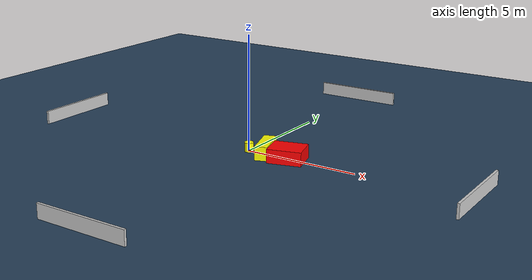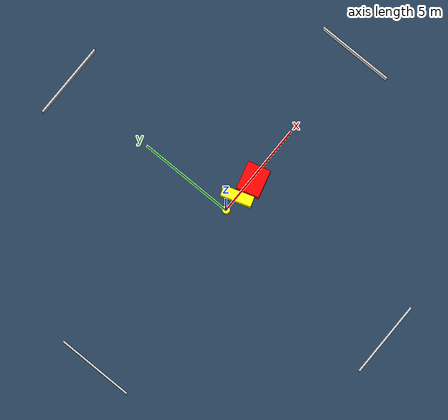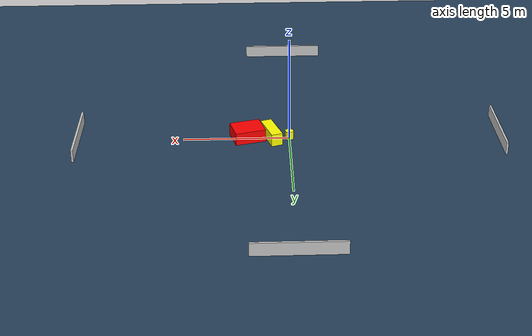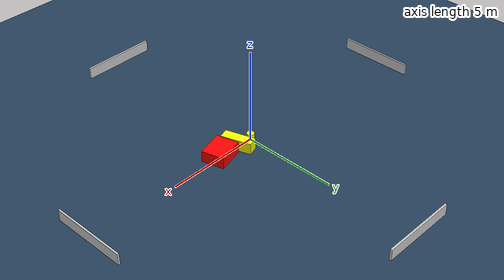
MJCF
<?xml version="1.0" ?>
<mujoco model="generated_environment">
  <option timestep="0.01" integrator="RK4" cone="elliptic"/>
  <default>
    <geom density="1"/>
  </default>
  <asset>
    <texture builtin="gradient" height="3072" name="skybox" rgb1="0.3 0.5 0.7" rgb2="0 0 0" type="skybox" width="512"/>
    <texture builtin="checker" height="300" name="groundplane" rgb1="0.2 0.3 0.4" rgb2="0.1 0.2 0.3" type="2d" width="300"/>
    <material name="groundplane" reflectance="0.2" texrepeat="5 5" texture="groundplane"/>
  </asset>
  <worldbody>
    <light dir="0 0 -1" directional="true" pos="0 0 1.5"/>
    <geom condim="3" friction="0.5 0.005 0.001" material="groundplane" name="floor" pos="0 0 0" size="0 0 0.05" type="plane"/>
    <body name="walls">
      <geom name="wall_1" condim="4" pos="-10.0 0.0 0.3" rgba="0.800000011920929 0.800000011920929 0.800000011920929 1.0" size="0.05 2.0 0.3" type="box"/>
      <geom name="wall_2" condim="4" pos="10.0 0.0 0.3" rgba="0.800000011920929 0.800000011920929 0.800000011920929 1.0" size="0.05 2.0 0.3" type="box"/>
      <geom name="wall_3" condim="4" pos="0.0 -10.0 0.3" rgba="0.800000011920929 0.800000011920929 0.800000011920929 1.0" size="2.0 0.05 0.3" type="box"/>
      <geom name="wall_4" condim="4" pos="0.0 10.0 0.3" rgba="0.800000011920929 0.800000011920929 0.800000011920929 1.0" size="2.0 0.05 0.3" type="box"/>
    </body>
    <body name="robot">
      <joint name="joint_x" type="slide" pos="0 0 0" axis="1 0 0"/>
      <joint name="joint_y" type="slide" pos="0 0 0" axis="0 1 0"/>
      <geom name="robot" type="cylinder" pos="0.0 0.0 0.2" size="0.2 0.2 0.0" mass="5.0" friction="1.0 0.005 0.0001" condim="4" rgba="1.0 1.0 0.0 1.0"/>
    </body>
    <body name="obstacle_1_movable">
      <geom name="obstacle_1_movable" condim="4" pos="0.8482120326086363 -0.015699955293077883 0.3" euler="0 0 198.19525128104658" friction="0.0 0.005 0.001" rgba="1.0 1.0 0.0 1.0" size="0.2708733267639892 0.7989265614013621 0.3" type="box" mass="0.1"/>
      <joint type="free"/>
    </body>
    <body name="obstacle_2_static">
      <geom name="obstacle_2_static" condim="4" pos="1.981187727594933 -0.1059826414310083 0.3" euler="0 0 15.047505359192987" friction="0.0 0.005 0.001" rgba="1.0 0.0 0.0 1.0" size="0.7273007952467831 0.6001804725963212 0.3" type="box"/>
    </body>
  </worldbody>
  <actuator>
    <motor name="actuator_x" joint="joint_x" gear="1" ctrlrange="-1 1"/>
    <motor name="actuator_y" joint="joint_y" gear="1" ctrlrange="-1 1"/>
  </actuator>
</mujoco>
